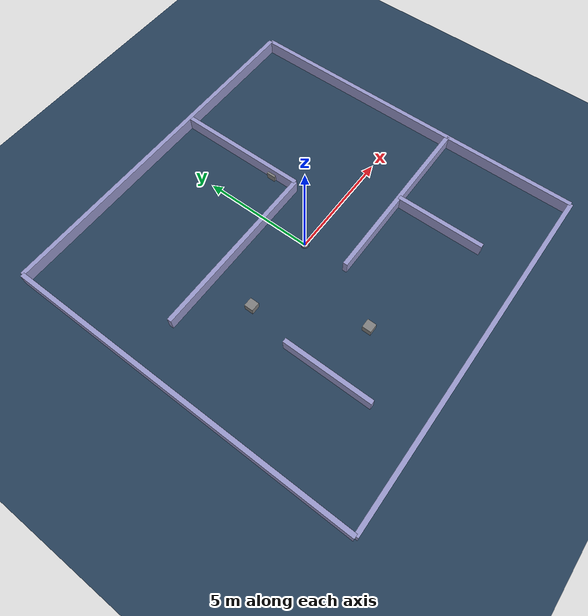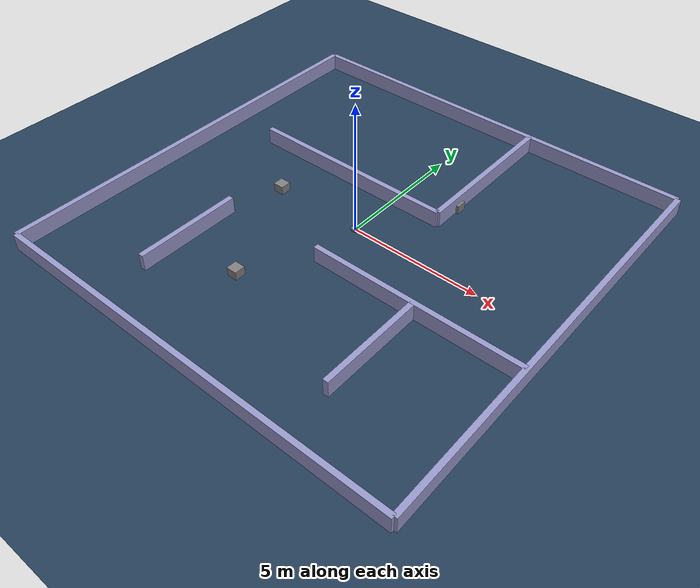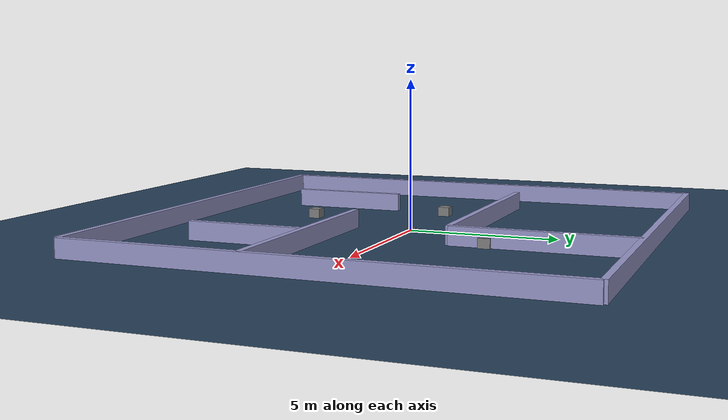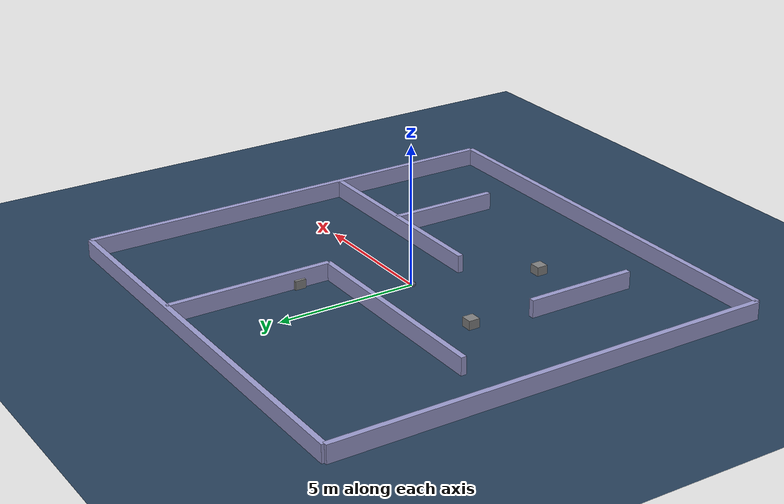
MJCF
<mujoco model="turtlebot4 scene">
  <include file="turtlebot4.xml"/>

  <statistic center="0 0 0.8" extent="2"/>

  <visual>
    <headlight diffuse="0.6 0.6 0.6" ambient="0.3 0.3 0.3" specular="0 0 0"/>
    <rgba haze="0.15 0.25 0.35 1"/>
    <global azimuth="120" elevation="-20"/>
  </visual>

  <asset>
    <texture type="skybox" builtin="gradient" rgb1="0.3 0.5 0.7" rgb2="0 0 0" width="512" height="3072"/>
    <texture type="2d" name="groundplane" builtin="checker" mark="edge" rgb1="0.2 0.3 0.4" rgb2="0.1 0.2 0.3" markrgb="0.8 0.8 0.8" width="300" height="300"/>
    <material name="groundplane" texture="groundplane" texuniform="true" texrepeat="5 5" reflectance="0.2"/>
  </asset>

  <worldbody>
    <light pos="1 -1 1.5" dir="-1 1 -1" diffuse="0.5 0.5 0.5" directional="true"/>
    <geom name="floor" size="0 0 0.05" type="plane" material="groundplane"/>
    <camera name="topdown" pos="0 0 12" zaxis="0 0 1" fovy="45"/>

    <!-- Exterior Walls -->
    <body name="wall_north" pos="8 0 0.2">
      <geom type="box" size="0.1 8 0.4" mass="0.2" rgba="0.6 0.6 0.8 1"/>
    </body>
    <body name="wall_south" pos="-8 0 0.2">
      <geom type="box" size="0.1 8 0.4" mass="0.2" rgba="0.6 0.6 0.8 1"/>
    </body>
    <body name="wall_east" pos="0 8 0.2">
      <geom type="box" size="8 0.1 0.4" mass="0.2" rgba="0.6 0.6 0.8 1"/>
    </body>
    <body name="wall_west" pos="0 -8 0.2">
      <geom type="box" size="8 0.1 0.4" mass="0.2" rgba="0.6 0.6 0.8 1"/>
    </body>

    <!-- Inner walls -->
    <body name="wall1" pos="2 5 0.2">
      <geom type="box" size="0.1 3 0.4" mass="0.2" rgba="0.6 0.6 0.8 1"/>
    </body>
    <body name="wall2" pos="-4 -4 0.2">
      <geom type="box" size="0.1 2 0.4" mass="0.2" rgba="0.6 0.6 0.8 1"/>
    </body>
    <body name="wall3" pos="-2 2 0.2">
      <geom type="box" size="4 0.1 0.4" mass="0.2" rgba="0.6 0.6 0.8 1"/>
    </body>
    <body name="wall4" pos="4 -2 0.2">
      <geom type="box" size="4 0.1 0.4" mass="0.2" rgba="0.6 0.6 0.8 1"/>
    </body>
    <body name="wall5" pos="4 -4 0.2">
      <geom type="box" size="0.1 2 0.4" mass="0.2" rgba="0.6 0.6 0.8 1"/>
    </body>

    <!-- free boxes -->
    <body name="box1" pos="2 3.2 0.1">
      <freejoint name="free_box1"/>
      <geom type="box" size="0.2 0.2 0.2" mass="0.2"/>
    </body>
    <body name="box2" pos="-1.5 -4.2 0.1">
      <freejoint name="free_box2"/>
      <geom type="box" size="0.2 0.2 0.2" mass="0.2"/>
    </body>
    <body name="box3" pos="-3.5 0 0.1">
      <freejoint name="free_box3"/>
      <geom type="box" size="0.2 0.2 0.2" mass="0.2"/>
    </body>

  </worldbody>
</mujoco>

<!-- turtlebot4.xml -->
<mujoco model="turtlebot4">
	<compiler angle="radian" coordinate="local" meshdir="./assets/meshes" autolimits="true"/>
		<!-- initial model from https://gitlab.dit.htwk-leipzig.de/eric.elbing/ai-enhanced-ros/-/tree/main/turtlebot4/turtlebot4ai_package-->
    <size nstack="300000" nuser_geom="1"/>
    <option gravity="0 0 -9.81" timestep="0.01"/>

    <asset>
        <material name="metal" rgba=".9 .95 .95 1"/>
        <material name="black" rgba="0 0 0 1"/>
        <material name="white" rgba="1 1 1 1"/>
        <material name="gray" rgba="0.371705 0.392426 0.474270 1"/>
        <mesh file="body_visual_processed.stl" scale="0.1 0.1 0.1"/>
        <mesh file="bumper_visual.obj" scale="0.001 0.001 0.001"/>
        <mesh file="top_reduced.stl" scale="0.001 0.001 0.001"/>
        <mesh file="weight_block.stl" scale="0.001 0.001 0.001"/>
        <mesh file="wheel.stl" scale="0.001 0.001 0.001"/>
    </asset>

  <worldbody>
      <body name="base" pos="0 0 0.0392" quat="0.70710678 0 0 0.70710678">    <freejoint name="floating_base_joint"/>
        <geom type="mesh" mesh="body_visual_processed" material="gray" mass="0.269"/>
        <site name="imu" pos="0.051 -0.035 0.0293" quat="0.70710678 0 0 -0.70710678"/>
        <body name="bumper" pos="0 0 0" axisangle="0 0 1 4.71239">
            <geom type="mesh" mesh="bumper_visual" material="black" mass="0.1"/>
        </body>
        <!-- WEIGHT BLOCKS -->
        <!-- WHEELS -->
        <body name="wheel_l" pos="0.11755 0.002 -0.0032">
            <geom type="mesh" mesh="wheel"/>
            <joint name="left" damping=".03" actuatorfrcrange="-.4 .4" pos="0 0 0" axis="1 0 0"/>
        </body>
        <body name="wheel_r" pos="-0.117 0.002 -0.0032">
            <geom type="mesh" mesh="wheel"/>
            <joint name="right" damping=".03" actuatorfrcrange="-.4 .4" pos="0 0 0" axis="1 0 0"/>
        </body>
        <body name="wheel_f" pos="0 -0.125 -0.026">
            <geom type="sphere" size="0.013 0.013"/>
            <joint type="ball"/>
        </body>

      <!-- Spinning 2D lidar (single rangefinder on a yaw hinge) -->
      <body name="lidar" pos="0.0 -0.00 0.08">
        <joint name="lidar_yaw" type="hinge" axis="0 0 1" damping="0.0032" armature="0.001" frictionloss="0" limited="false"/>
        <geom name="lidar_head_geom" type="cylinder" size="0.035 0.015" rgba="0.1 0.1 0.1 1.0" mass="0.01"/>
        <site name="rf" pos="0.025 0 0" axisangle="0 1 0 1.570796" size="0.003" rgba="0 1 0 0.5"/>
      </body>
    </body>
  </worldbody>

  <tendon>
    <fixed name="forward">
      <joint joint="left" coef=".83"/>
      <joint joint="right" coef=".83"/>
    </fixed>
    <fixed name="turn">
      <joint joint="left" coef="-.1"/>
      <joint joint="right" coef=".1"/>
    </fixed>
  </tendon>

  <actuator>
    <motor name="forward" tendon="forward" ctrlrange="-0.5 0.5"/>
    <motor name="turn" tendon="turn" ctrlrange="-2 2"/>
    <!-- Velocity servo for the lidar yaw joint -->
    <!-- Set control to 15.707963 (rad/s) for a 2.5 Hz spin -->
    <motor name="lidar_spin" joint="lidar_yaw" ctrllimited="true" ctrlrange="0.0 0.05"/>
  </actuator>

  <sensor>
    <!-- IMU -->
    <framequat name="imu_quat" objtype="site" objname="imu"/>
    <gyro name="imu_ang" site="imu"/>
    <accelerometer name="imu_acc" site="imu"/>

    <!-- Wheel joint states -->
    <jointpos name="left_pos"  joint="left"/>
    <jointvel name="left_vel"  joint="left"/>
    <jointpos name="right_pos" joint="right"/>
    <jointvel name="right_vel" joint="right"/>

    <!-- Lidar 2D rangefinders -->
    <!-- Lidar yaw -->
    <jointpos name="lidar_yaw_pos" joint="lidar_yaw"/>
    <jointvel name="lidar_yaw_vel" joint="lidar_yaw"/>
    <!-- Single 2D lidar rangefinder (returns distance along site -Z) -->
    <rangefinder name="scan" site="rf" cutoff="10"/>
    <velocimeter name="base_linvel" site="imu"/>

  </sensor>
</mujoco>
